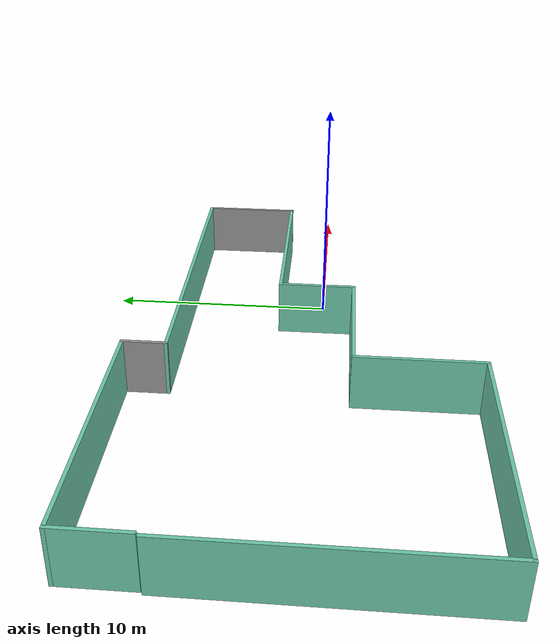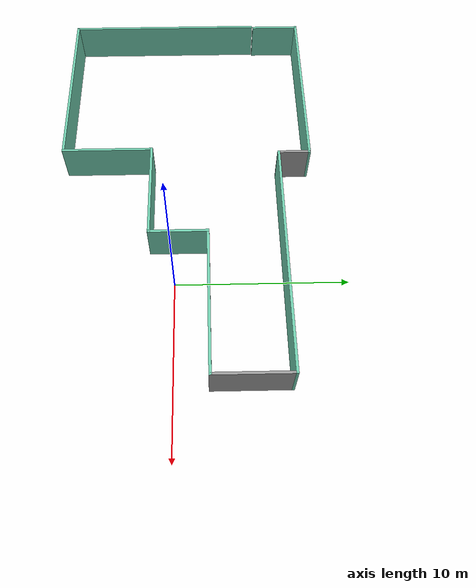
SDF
<?xml version='1.0'?>
<sdf version='1.6'>
  <model name='myworld'>
    <pose frame=''>-6.19771 0.713766 0 0 -0 0</pose>
    <link name='Wall_15'>
      <collision name='Wall_15_Collision'>
        <geometry>
          <box>
            <size>12 0.15 2.5</size>
          </box>
        </geometry>
        <pose frame=''>0 0 1.25 0 -0 0</pose>
      </collision>
      <visual name='Wall_15_Visual'>
        <pose frame=''>0 0 1.25 0 -0 0</pose>
        <geometry>
          <box>
            <size>12 0.15 2.5</size>
          </box>
        </geometry>
        <material>
          <script>
            <uri>file://media/materials/scripts/gazebo.material</uri>
            <name>Gazebo/Grey</name>
          </script>
          <ambient>0.435294 0.796078 0.67451 1</ambient>
        </material>
        <meta>
          <layer>0</layer>
        </meta>
      </visual>
      <pose frame=''>-12.4 -1.525 0 0 0 -1.5708</pose>
    </link>
    <link name='Wall_16'>
      <collision name='Wall_16_Collision'>
        <geometry>
          <box>
            <size>10.75 0.15 2.5</size>
          </box>
        </geometry>
        <pose frame=''>0 0 1.25 0 -0 0</pose>
      </collision>
      <visual name='Wall_16_Visual'>
        <pose frame=''>0 0 1.25 0 -0 0</pose>
        <geometry>
          <box>
            <size>10.75 0.15 2.5</size>
          </box>
        </geometry>
        <material>
          <script>
            <uri>file://media/materials/scripts/gazebo.material</uri>
            <name>Gazebo/Grey</name>
          </script>
          <ambient>0.435294 0.796078 0.67451 1</ambient>
        </material>
        <meta>
          <layer>0</layer>
        </meta>
      </visual>
      <pose frame=''>-7.1 -7.45 0 0 -0 0</pose>
    </link>
    <link name='Wall_17'>
      <collision name='Wall_17_Collision'>
        <geometry>
          <box>
            <size>5.5 0.15 2.5</size>
          </box>
        </geometry>
        <pose frame=''>0 0 1.25 0 -0 0</pose>
      </collision>
      <visual name='Wall_17_Visual'>
        <pose frame=''>0 0 1.25 0 -0 0</pose>
        <geometry>
          <box>
            <size>5.5 0.15 2.5</size>
          </box>
        </geometry>
        <material>
          <script>
            <uri>file://media/materials/scripts/gazebo.material</uri>
            <name>Gazebo/Grey</name>
          </script>
          <ambient>0.435294 0.796078 0.67451 1</ambient>
        </material>
        <meta>
          <layer>0</layer>
        </meta>
      </visual>
      <pose frame=''>-1.8 -4.775 0 0 -0 1.5708</pose>
    </link>
    <link name='Wall_18'>
      <collision name='Wall_18_Collision'>
        <geometry>
          <box>
            <size>6 0.15 2.5</size>
          </box>
        </geometry>
        <pose frame=''>0 0 1.25 0 -0 0</pose>
      </collision>
      <visual name='Wall_18_Visual'>
        <pose frame=''>0 0 1.25 0 -0 0</pose>
        <geometry>
          <box>
            <size>6 0.15 2.5</size>
          </box>
        </geometry>
        <material>
          <script>
            <uri>file://media/materials/scripts/gazebo.material</uri>
            <name>Gazebo/Grey</name>
          </script>
          <ambient>0.435294 0.796078 0.67451 1</ambient>
        </material>
        <meta>
          <layer>0</layer>
        </meta>
      </visual>
      <pose frame=''>1.125 -2.1 0 0 -0 0</pose>
    </link>
    <link name='Wall_19'>
      <collision name='Wall_19_Collision'>
        <geometry>
          <box>
            <size>3.5 0.15 2.5</size>
          </box>
        </geometry>
        <pose frame=''>0 0 1.25 0 -0 0</pose>
      </collision>
      <visual name='Wall_19_Visual'>
        <pose frame=''>0 0 1.25 0 -0 0</pose>
        <geometry>
          <box>
            <size>3.5 0.15 2.5</size>
          </box>
        </geometry>
        <material>
          <script>
            <uri>file://media/materials/scripts/gazebo.material</uri>
            <name>Gazebo/Grey</name>
          </script>
          <ambient>0.435294 0.796078 0.67451 1</ambient>
        </material>
        <meta>
          <layer>0</layer>
        </meta>
      </visual>
      <pose frame=''>4.05 -0.425 0 0 -0 1.5708</pose>
    </link>
    <link name='Wall_22'>
      <collision name='Wall_22_Collision'>
        <geometry>
          <box>
            <size>8.5 0.15 2.5</size>
          </box>
        </geometry>
        <pose frame=''>0 0 1.25 0 -0 0</pose>
      </collision>
      <visual name='Wall_22_Visual'>
        <pose frame=''>0 0 1.25 0 -0 0</pose>
        <geometry>
          <box>
            <size>8.5 0.15 2.5</size>
          </box>
        </geometry>
        <material>
          <script>
            <uri>file://media/materials/scripts/gazebo.material</uri>
            <name>Gazebo/Grey</name>
          </script>
          <ambient>0.435294 0.796078 0.67451 1</ambient>
        </material>
        <meta>
          <layer>0</layer>
        </meta>
      </visual>
      <pose frame=''>8.225 1.25 0 0 -0 0</pose>
    </link>
    <link name='Wall_23'>
      <collision name='Wall_23_Collision'>
        <geometry>
          <box>
            <size>4.5 0.15 2.5</size>
          </box>
        </geometry>
        <pose frame=''>0 0 1.25 0 -0 0</pose>
      </collision>
      <visual name='Wall_23_Visual'>
        <pose frame=''>0 0 1.25 0 -0 0</pose>
        <geometry>
          <box>
            <size>4.5 0.15 2.5</size>
          </box>
        </geometry>
        <material>
          <script>
            <uri>file://media/materials/scripts/gazebo.material</uri>
            <name>Gazebo/Grey</name>
          </script>
          <ambient>1 1 1 1</ambient>
        </material>
        <meta>
          <layer>0</layer>
        </meta>
      </visual>
      <pose frame=''>12.4 3.425 0 0 -0 1.5708</pose>
    </link>
    <link name='Wall_24'>
      <collision name='Wall_24_Collision'>
        <geometry>
          <box>
            <size>14 0.15 2.5</size>
          </box>
        </geometry>
        <pose frame=''>0 0 1.25 0 -0 0</pose>
      </collision>
      <visual name='Wall_24_Visual'>
        <pose frame=''>0 0 1.25 0 -0 0</pose>
        <geometry>
          <box>
            <size>14 0.15 2.5</size>
          </box>
        </geometry>
        <material>
          <script>
            <uri>file://media/materials/scripts/gazebo.material</uri>
            <name>Gazebo/Grey</name>
          </script>
          <ambient>0.435294 0.796078 0.67451 1</ambient>
        </material>
        <meta>
          <layer>0</layer>
        </meta>
      </visual>
      <pose frame=''>5.475 5.6 0 0 -0 3.14159</pose>
    </link>
    <link name='Wall_25'>
      <collision name='Wall_25_Collision'>
        <geometry>
          <box>
            <size>2 0.15 2.5</size>
          </box>
        </geometry>
        <pose frame=''>0 0 1.25 0 -0 0</pose>
      </collision>
      <visual name='Wall_25_Visual'>
        <pose frame=''>0 0 1.25 0 -0 0</pose>
        <geometry>
          <box>
            <size>2 0.15 2.5</size>
          </box>
        </geometry>
        <material>
          <script>
            <uri>file://media/materials/scripts/gazebo.material</uri>
            <name>Gazebo/Grey</name>
          </script>
          <ambient>1 1 1 1</ambient>
        </material>
        <meta>
          <layer>0</layer>
        </meta>
      </visual>
      <pose frame=''>-1.45 6.525 0 0 -0 1.5708</pose>
    </link>
    <link name='Wall_26'>
      <collision name='Wall_26_Collision'>
        <geometry>
          <box>
            <size>11 0.15 2.5</size>
          </box>
        </geometry>
        <pose frame=''>0 0 1.25 0 -0 0</pose>
      </collision>
      <visual name='Wall_26_Visual'>
        <pose frame=''>0 0 1.25 0 -0 0</pose>
        <geometry>
          <box>
            <size>11 0.15 2.5</size>
          </box>
        </geometry>
        <material>
          <script>
            <uri>file://media/materials/scripts/gazebo.material</uri>
            <name>Gazebo/Grey</name>
          </script>
          <ambient>0.435294 0.796078 0.67451 1</ambient>
        </material>
        <meta>
          <layer>0</layer>
        </meta>
      </visual>
      <pose frame=''>-6.875 7.45 0 0 -0 3.14159</pose>
    </link>
    <link name='Wall_27'>
      <collision name='Wall_27_Collision'>
        <geometry>
          <box>
            <size>3 0.15 2.5</size>
          </box>
        </geometry>
        <pose frame=''>0 0 1.25 0 -0 0</pose>
      </collision>
      <visual name='Wall_27_Visual'>
        <pose frame=''>0 0 1.25 0 -0 0</pose>
        <geometry>
          <box>
            <size>3 0.15 2.5</size>
          </box>
        </geometry>
        <material>
          <script>
            <uri>file://media/materials/scripts/gazebo.material</uri>
            <name>Gazebo/Grey</name>
          </script>
          <ambient>0.435294 0.796078 0.67451 1</ambient>
        </material>
        <meta>
          <layer>0</layer>
        </meta>
      </visual>
      <pose frame=''>-12.3 6.025 0 0 0 -1.5708</pose>
    </link>
    <static>1</static>
  </model>
</sdf>
